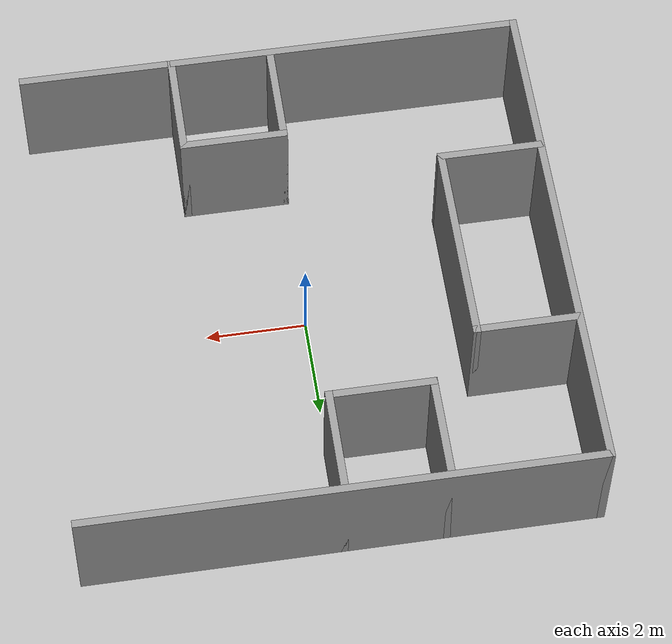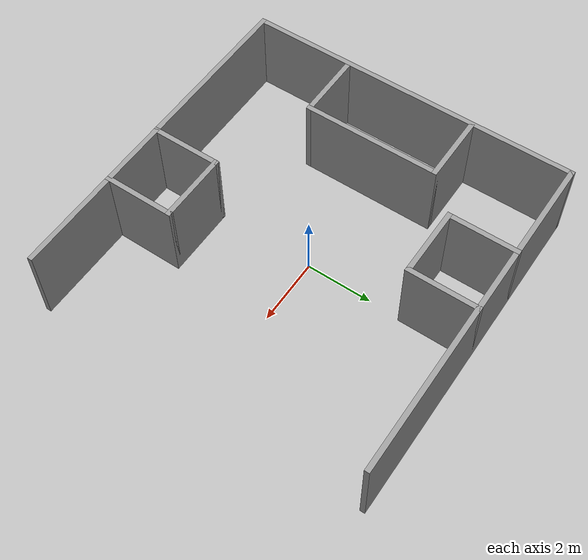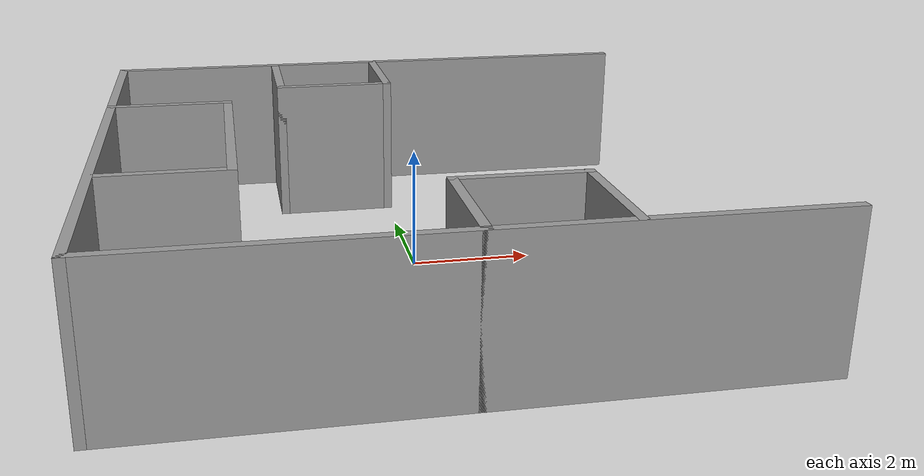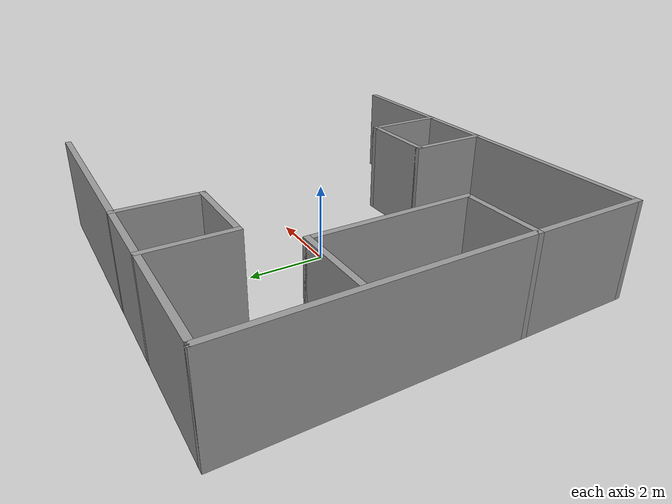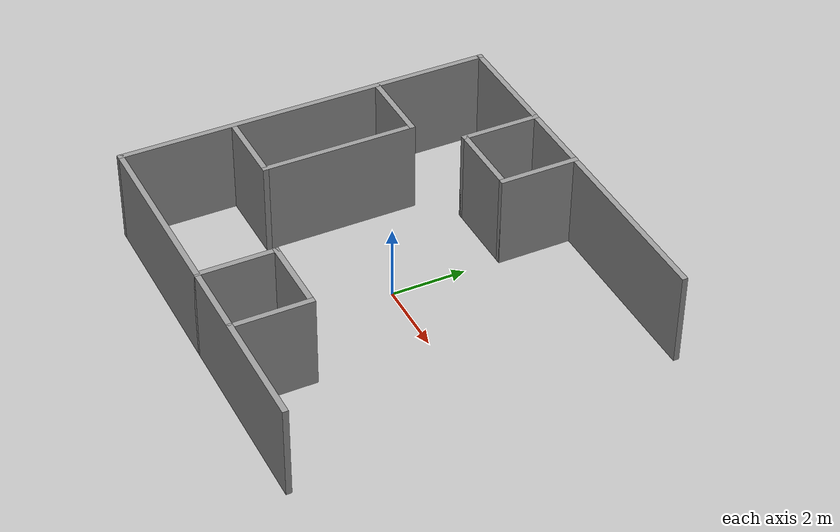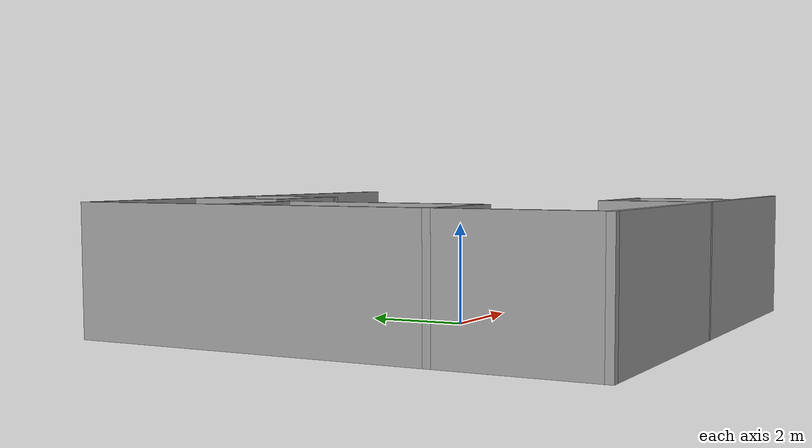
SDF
<?xml version='1.0'?>
<sdf version='1.6'>
  <model name='part_u'>
    <pose frame=''>-0 0 0 0 -0 0</pose>
    <link name='Wall_78'>
      <collision name='Wall_78_Collision'>
        <geometry>
          <box>
            <size>10.15 0.15 2.5</size>
          </box>
        </geometry>
        <pose frame=''>0 0 1.25 0 -0 0</pose>
      </collision>
      <visual name='Wall_78_Visual'>
        <pose frame=''>0 0 1.25 0 -0 0</pose>
        <geometry>
          <box>
            <size>10.15 0.15 2.5</size>
          </box>
        </geometry>
        <material>
          <script>
            <uri>file://media/materials/scripts/gazebo.material</uri>
            <name>Gazebo/Grey</name>
          </script>
          <ambient>1 1 1 1</ambient>
        </material>
      </visual>
      <pose frame=''>0 -5 0 0 -0 3.14159</pose>
    </link>
    <link name='Wall_79'>
      <collision name='Wall_79_Collision'>
        <geometry>
          <box>
            <size>10.15 0.15 2.5</size>
          </box>
        </geometry>
        <pose frame=''>0 0 1.25 0 -0 0</pose>
      </collision>
      <visual name='Wall_79_Visual'>
        <pose frame=''>0 0 1.25 0 -0 0</pose>
        <geometry>
          <box>
            <size>10.15 0.15 2.5</size>
          </box>
        </geometry>
        <material>
          <script>
            <uri>file://media/materials/scripts/gazebo.material</uri>
            <name>Gazebo/Grey</name>
          </script>
          <ambient>1 1 1 1</ambient>
        </material>
      </visual>
      <pose frame=''>-5 0 0 0 -0 1.5708</pose>
    </link>
    <link name='Wall_80'>
      <collision name='Wall_80_Collision'>
        <geometry>
          <box>
            <size>10.15 0.15 2.5</size>
          </box>
        </geometry>
        <pose frame=''>0 0 1.25 0 -0 0</pose>
      </collision>
      <visual name='Wall_80_Visual'>
        <pose frame=''>0 0 1.25 0 -0 0</pose>
        <geometry>
          <box>
            <size>10.15 0.15 2.5</size>
          </box>
        </geometry>
        <material>
          <script>
            <uri>file://media/materials/scripts/gazebo.material</uri>
            <name>Gazebo/Grey</name>
          </script>
          <ambient>1 1 1 1</ambient>
        </material>
      </visual>
      <pose frame=''>0 5 0 0 -0 0</pose>
    </link>
    <link name='Wall_82'>
      <collision name='Wall_82_Collision'>
        <geometry>
          <box>
            <size>2.15 0.15 2.5</size>
          </box>
        </geometry>
        <pose frame=''>0 0 1.25 0 -0 0</pose>
      </collision>
      <visual name='Wall_82_Visual'>
        <pose frame=''>0 0 1.25 0 -0 0</pose>
        <geometry>
          <box>
            <size>2.15 0.15 2.5</size>
          </box>
        </geometry>
        <material>
          <script>
            <uri>file://media/materials/scripts/gazebo.material</uri>
            <name>Gazebo/Grey</name>
          </script>
          <ambient>1 1 1 1</ambient>
        </material>
      </visual>
      <pose frame=''>-4 2 0 0 -0 0</pose>
    </link>
    <link name='Wall_83'>
      <collision name='Wall_83_Collision'>
        <geometry>
          <box>
            <size>4.15 0.15 2.5</size>
          </box>
        </geometry>
        <pose frame=''>0 0 1.25 0 -0 0</pose>
      </collision>
      <visual name='Wall_83_Visual'>
        <pose frame=''>0 0 1.25 0 -0 0</pose>
        <geometry>
          <box>
            <size>4.15 0.15 2.5</size>
          </box>
        </geometry>
        <material>
          <script>
            <uri>file://media/materials/scripts/gazebo.material</uri>
            <name>Gazebo/Grey</name>
          </script>
          <ambient>1 1 1 1</ambient>
        </material>
      </visual>
      <pose frame=''>-3 0 0 0 0 -1.5708</pose>
    </link>
    <link name='Wall_84'>
      <collision name='Wall_84_Collision'>
        <geometry>
          <box>
            <size>2.15 0.15 2.5</size>
          </box>
        </geometry>
        <pose frame=''>0 0 1.25 0 -0 0</pose>
      </collision>
      <visual name='Wall_84_Visual'>
        <pose frame=''>0 0 1.25 0 -0 0</pose>
        <geometry>
          <box>
            <size>2.15 0.15 2.5</size>
          </box>
        </geometry>
        <material>
          <script>
            <uri>file://media/materials/scripts/gazebo.material</uri>
            <name>Gazebo/Grey</name>
          </script>
          <ambient>1 1 1 1</ambient>
        </material>
      </visual>
      <pose frame=''>-4 -2 0 0 -0 3.14159</pose>
    </link>
    <link name='Wall_86'>
      <collision name='Wall_86_Collision'>
        <geometry>
          <box>
            <size>2.15 0.15 2.5</size>
          </box>
        </geometry>
        <pose frame=''>0 0 1.25 0 -0 0</pose>
      </collision>
      <visual name='Wall_86_Visual'>
        <pose frame=''>0 0 1.25 0 -0 0</pose>
        <geometry>
          <box>
            <size>2.15 0.15 2.5</size>
          </box>
        </geometry>
        <material>
          <script>
            <uri>file://media/materials/scripts/gazebo.material</uri>
            <name>Gazebo/Grey</name>
          </script>
          <ambient>1 1 1 1</ambient>
        </material>
      </visual>
      <pose frame=''>-2 4 0 0 0 -1.5708</pose>
    </link>
    <link name='Wall_87'>
      <collision name='Wall_87_Collision'>
        <geometry>
          <box>
            <size>2.15 0.15 2.5</size>
          </box>
        </geometry>
        <pose frame=''>0 0 1.25 0 -0 0</pose>
      </collision>
      <visual name='Wall_87_Visual'>
        <pose frame=''>0 0 1.25 0 -0 0</pose>
        <geometry>
          <box>
            <size>2.15 0.15 2.5</size>
          </box>
        </geometry>
        <material>
          <script>
            <uri>file://media/materials/scripts/gazebo.material</uri>
            <name>Gazebo/Grey</name>
          </script>
          <ambient>1 1 1 1</ambient>
        </material>
      </visual>
      <pose frame=''>-1 3 0 0 -0 0</pose>
    </link>
    <link name='Wall_88'>
      <collision name='Wall_88_Collision'>
        <geometry>
          <box>
            <size>2.15 0.15 2.5</size>
          </box>
        </geometry>
        <pose frame=''>0 0 1.25 0 -0 0</pose>
      </collision>
      <visual name='Wall_88_Visual'>
        <pose frame=''>0 0 1.25 0 -0 0</pose>
        <geometry>
          <box>
            <size>2.15 0.15 2.5</size>
          </box>
        </geometry>
        <material>
          <script>
            <uri>file://media/materials/scripts/gazebo.material</uri>
            <name>Gazebo/Grey</name>
          </script>
          <ambient>1 1 1 1</ambient>
        </material>
      </visual>
      <pose frame=''>0 4 0 0 -0 1.5708</pose>
    </link>
    <link name='Wall_90'>
      <collision name='Wall_90_Collision'>
        <geometry>
          <box>
            <size>2.15 0.15 2.5</size>
          </box>
        </geometry>
        <pose frame=''>0 0 1.25 0 -0 0</pose>
      </collision>
      <visual name='Wall_90_Visual'>
        <pose frame=''>0 0 1.25 0 -0 0</pose>
        <geometry>
          <box>
            <size>2.15 0.15 2.5</size>
          </box>
        </geometry>
        <material>
          <script>
            <uri>file://media/materials/scripts/gazebo.material</uri>
            <name>Gazebo/Grey</name>
          </script>
          <ambient>1 1 1 1</ambient>
        </material>
      </visual>
      <pose frame=''>0 -4 0 0 -0 1.5708</pose>
    </link>
    <link name='Wall_91'>
      <collision name='Wall_91_Collision'>
        <geometry>
          <box>
            <size>2.15 0.15 2.5</size>
          </box>
        </geometry>
        <pose frame=''>0 0 1.25 0 -0 0</pose>
      </collision>
      <visual name='Wall_91_Visual'>
        <pose frame=''>0 0 1.25 0 -0 0</pose>
        <geometry>
          <box>
            <size>2.15 0.15 2.5</size>
          </box>
        </geometry>
        <material>
          <script>
            <uri>file://media/materials/scripts/gazebo.material</uri>
            <name>Gazebo/Grey</name>
          </script>
          <ambient>1 1 1 1</ambient>
        </material>
      </visual>
      <pose frame=''>1 -3 0 0 -0 0</pose>
    </link>
    <link name='Wall_92'>
      <collision name='Wall_92_Collision'>
        <geometry>
          <box>
            <size>2.15 0.15 2.5</size>
          </box>
        </geometry>
        <pose frame=''>0 0 1.25 0 -0 0</pose>
      </collision>
      <visual name='Wall_92_Visual'>
        <pose frame=''>0 0 1.25 0 -0 0</pose>
        <geometry>
          <box>
            <size>2.15 0.15 2.5</size>
          </box>
        </geometry>
        <material>
          <script>
            <uri>file://media/materials/scripts/gazebo.material</uri>
            <name>Gazebo/Grey</name>
          </script>
          <ambient>1 1 1 1</ambient>
        </material>
      </visual>
      <pose frame=''>2 -4 0 0 0 -1.5708</pose>
    </link>
    <static>1</static>
  </model>
</sdf>
